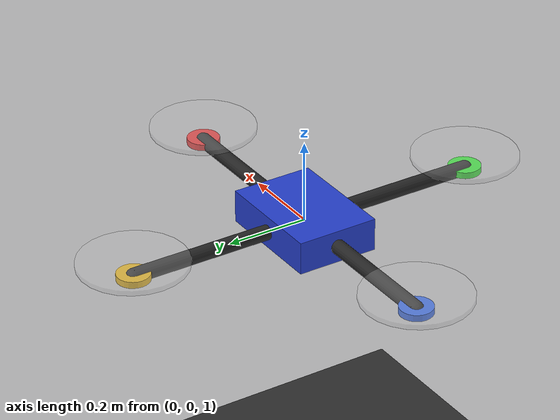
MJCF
<mujoco model="dmdc_quadrotor">

    <compiler angle="radian" autolimits="true"/>

    <option
        timestep="0.002"
        integrator="RK4"
        gravity="0 0 -9.81"/>

    <visual>
        <headlight
            diffuse="0.8 0.8 0.8"
            ambient="0.3 0.3 0.3"/>

        <map
            znear="0.01"
            zfar="100"/>
    </visual>

    <default>

        <geom
            contype="1"
            conaffinity="1"
            friction="0.8 0.1 0.1"/>

        <site
            size="0.025"/>

    </default>

    <worldbody>

        <!-- Ground -->
        <geom
            name="floor"
            type="plane"
            pos="0 0 0"
            size="10 10 0.1"
            rgba="0.18 0.18 0.18 1"/>

        <!-- Lighting -->
        <light
            name="sun"
            pos="0 0 5"
            dir="0 0 -1"
            directional="true"/>

        <!-- QUADROTOR -->
        <body
            name="quadrotor"
            pos="0 0 1.0">

            <!-- Six-DOF floating body -->
            <freejoint name="free"/>

            <!-- Physical properties -->
            <inertial
                pos="0 0 0"
                mass="1.0"
                diaginertia="0.02 0.02 0.04"/>

            <!-- Central frame -->
            <geom
                name="body"
                type="box"
                size="0.14 0.10 0.04"
                mass="0"
                rgba="0.15 0.25 0.8 1"/>

            <!-- Cross arms -->
            <geom
                name="arm_x"
                type="capsule"
                fromto="-0.45 0 0 0.45 0 0"
                size="0.018"
                mass="0"
                rgba="0.15 0.15 0.15 1"/>

            <geom
                name="arm_y"
                type="capsule"
                fromto="0 -0.45 0 0 0.45 0"
                size="0.018"
                mass="0"
                rgba="0.15 0.15 0.15 1"/>

            <!-- MOTOR SITES -->

            <!-- Motor 1: +X -->
            <site
                name="motor1_site"
                pos="0.45 0 0"
                type="cylinder"
                size="0.04 0.008"
                rgba="0.9 0.2 0.2 1"/>

            <!-- Motor 2: -Y -->
            <site
                name="motor2_site"
                pos="0 -0.45 0"
                type="cylinder"
                size="0.04 0.008"
                rgba="0.2 0.9 0.2 1"/>

            <!-- Motor 3: -X -->
            <site
                name="motor3_site"
                pos="-0.45 0 0"
                type="cylinder"
                size="0.04 0.008"
                rgba="0.2 0.4 0.9 1"/>

            <!-- Motor 4: +Y -->
            <site
                name="motor4_site"
                pos="0 0.45 0"
                type="cylinder"
                size="0.04 0.008"
                rgba="0.9 0.7 0.1 1"/>

            <!-- Propeller visualizations -->

            <geom
                name="prop1"
                type="cylinder"
                pos="0.45 0 0.035"
                size="0.13 0.006"
                mass="0"
                contype="0"
                conaffinity="0"
                rgba="0.8 0.8 0.8 0.25"/>

            <geom
                name="prop2"
                type="cylinder"
                pos="0 -0.45 0.035"
                size="0.13 0.006"
                mass="0"
                contype="0"
                conaffinity="0"
                rgba="0.8 0.8 0.8 0.25"/>

            <geom
                name="prop3"
                type="cylinder"
                pos="-0.45 0 0.035"
                size="0.13 0.006"
                mass="0"
                contype="0"
                conaffinity="0"
                rgba="0.8 0.8 0.8 0.25"/>

            <geom
                name="prop4"
                type="cylinder"
                pos="0 0.45 0.035"
                size="0.13 0.006"
                mass="0"
                contype="0"
                conaffinity="0"
                rgba="0.8 0.8 0.8 0.25"/>

        </body>

    </worldbody>

    <!-- FOUR VIRTUAL MOTORS -->

    <actuator>

        <!-- Motor 1 -->
        <motor
            name="motor1"
            site="motor1_site"
            gear="0 0 1 0 0 0.02"
            ctrllimited="true"
            ctrlrange="0 8"/>

        <!-- Motor 2 -->
        <motor
            name="motor2"
            site="motor2_site"
            gear="0 0 1 0 0 -0.02"
            ctrllimited="true"
            ctrlrange="0 8"/>

        <!-- Motor 3 -->
        <motor
            name="motor3"
            site="motor3_site"
            gear="0 0 1 0 0 0.02"
            ctrllimited="true"
            ctrlrange="0 8"/>

        <!-- Motor 4 -->
        <motor
            name="motor4"
            site="motor4_site"
            gear="0 0 1 0 0 -0.02"
            ctrllimited="true"
            ctrlrange="0 8"/>

    </actuator>

</mujoco>
